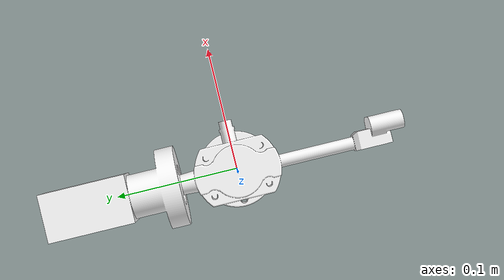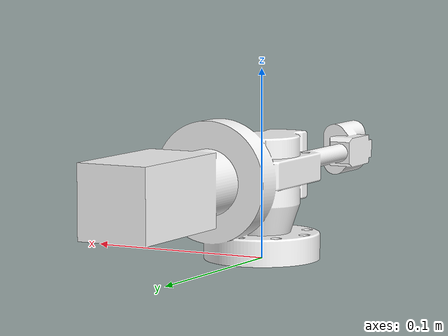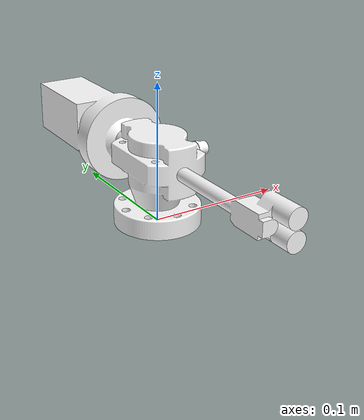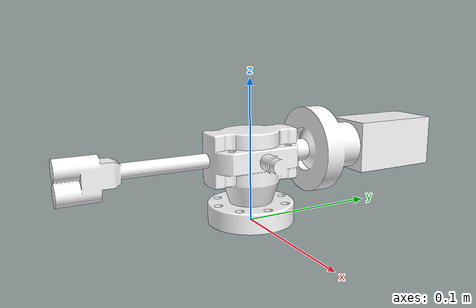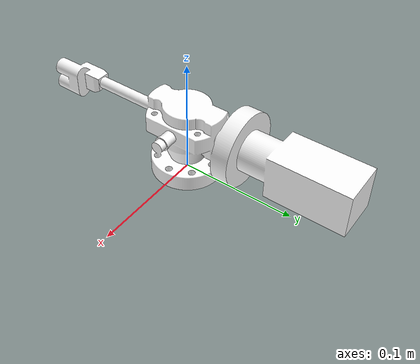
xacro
<?xml version="1.0"?>

<!-- Here we define the robot, we named it "exoscope" -->
<robot xmlns:xacro="http://www.ros.org/wiki/xacro" name="exoscope">

    <!--Import the exoscope macro -->
    <xacro:include filename="$(find storz_straight_exoscope_hsi_description)/urdf/storz_straight_exoscope_hsi_description.urdf.xacro"/>

    <!--  Arguments for the med7 macro  -->
    <xacro:arg name="exoscope_name" default="storz_straight_exoscope_hsi"/>
    <xacro:arg name="robot_name" default="lbr"/>

    <!-- fix to world -->
    <link name="world"/>

    <!-- insert exoscope -->
    <xacro:storz_straight_exoscope_hsi  exoscope_name="$(arg exoscope_name)" robot_name="$(arg robot_name)" parent="world"/>

</robot>

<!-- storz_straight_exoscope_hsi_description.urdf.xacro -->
<robot xmlns:xacro="http://www.ros.org/wiki/xacro">

    <xacro:macro name="storz_straight_exoscope_hsi" params="exoscope_name robot_name parent">

        <!-- include gazebo specifications -->
        <xacro:include filename="$(find storz_straight_exoscope_hsi_description)/gazebo/storz_straight_exoscope_hsi.gazebo.xacro" />

        <!--joint between {parent} and link_0-->
        <joint name="${parent}_${exoscope_name}_joint" type="fixed">
            <parent link="${parent}"/>
            <child link="${exoscope_name}_link_0"/>
            <origin xyz="0 0 0" rpy="0 -1.57079632679 1.57079632679"/>
        </joint>

        <!-- link 0 -->
        <link name="${exoscope_name}_link_0">
            <inertial>
                <origin rpy="0 0 0" xyz="0.04071287283172147 -8.153806755863768e-05 -0.04195721621845735"/>
                <mass value="2.4245187944339057"/>
                <inertia ixx="0.00996" ixy="1e-06" ixz="0.000598" iyy="0.01031" iyz="0.000146" izz="0.00104"/>
            </inertial>
            <visual>
                <origin rpy="0 0 0" xyz="0 0 0"/>
                <geometry>
                    <mesh filename="package://storz_straight_exoscope_hsi_description/meshes/visual/link_0.stl" scale="0.001 0.001 0.001"/>
                </geometry>
                <material name="white">
                    <color rgba="1.0 1.0 1.0 1.0"/>
                </material>
            </visual>
            <collision>
                <origin rpy="0 0 0" xyz="0 0 0"/>
                <geometry>
                    <mesh filename="package://storz_straight_exoscope_hsi_description/meshes/collision/link_0.stl" scale="0.001 0.001 0.001"/>
                </geometry>
            </collision>
        </link>

        <joint name="${exoscope_name}_joint_cm" type="fixed">
            <origin rpy="-1.57079632679 -1.57079632679 0" xyz="0.046594 0.000596 0.1205"/>
            <parent link="${exoscope_name}_link_0"/>
            <child link="${exoscope_name}_link_cm"/>
        </joint>

        <!-- camera link -->
        <link name="${exoscope_name}_link_cm"/>

        <!-- optical frame https://answers.ros.org/question/232534/gazebo-camera-frame-is-inconsistent-with-rviz-opencv-convention/ -->
        <joint name="${exoscope_name}_joint_cm_optical" type="fixed">  <!-- add continuous joint to rotate image digitally -->
            <parent link="${exoscope_name}_link_cm"/>
            <child link="${exoscope_name}_link_cm_optical"/>
            <origin xyz="0 0 0" rpy="-1.57079632679 0 -1.57079632679"/>
            <!--axis xyz="0.0 0.0 0.01"/-->  <!-- rotate about the optical axis -->
        </joint>

        <link name="${exoscope_name}_link_cm_optical">
        </link>

        <!-- extensions -->
        <xacro:storz_straight_exoscope_hsi_gazebo exoscope_name="${exoscope_name}" robot_name="${robot_name}"/>

    </xacro:macro>
</robot>
